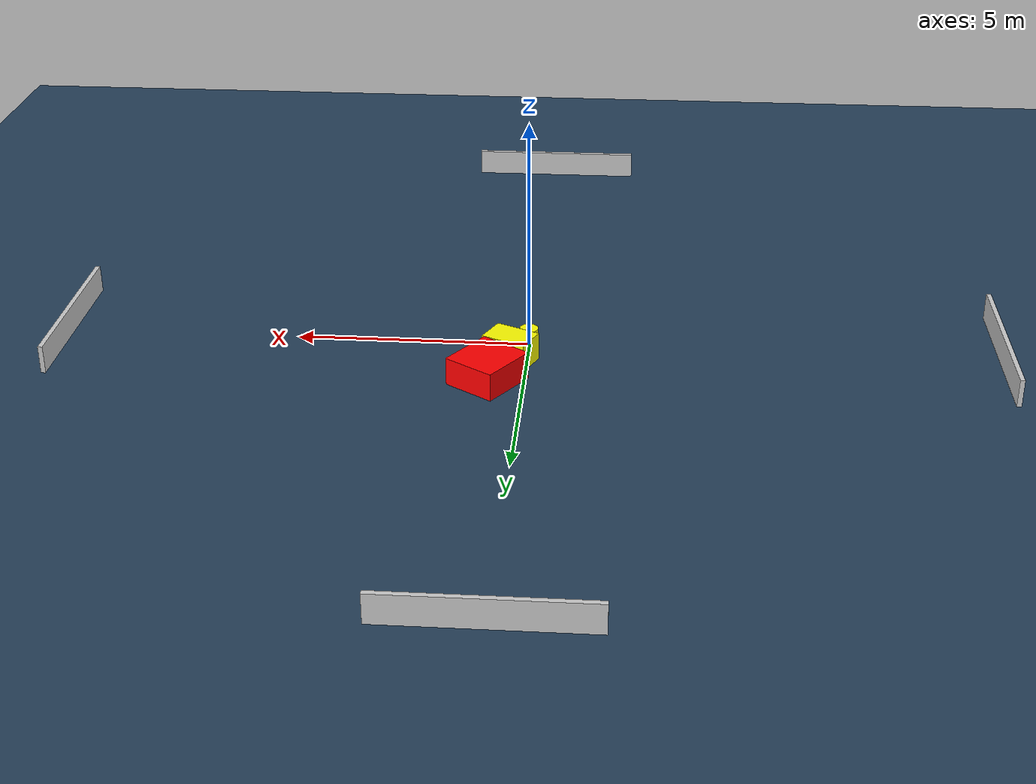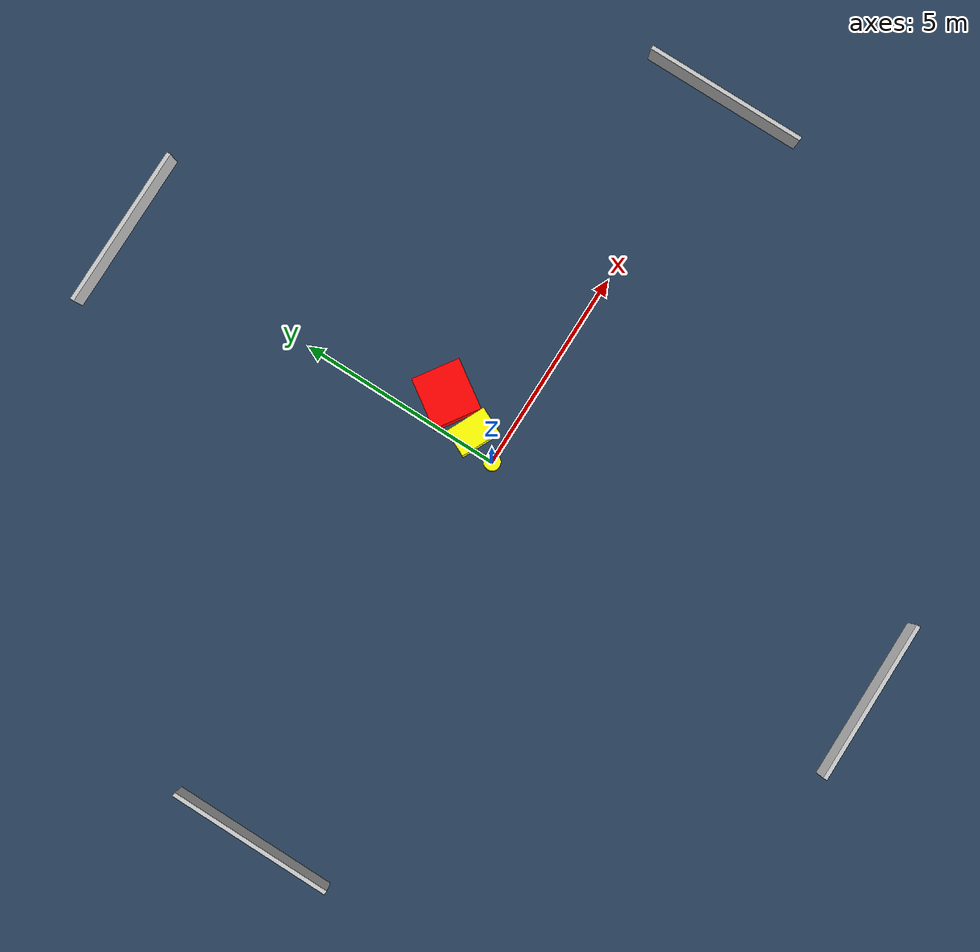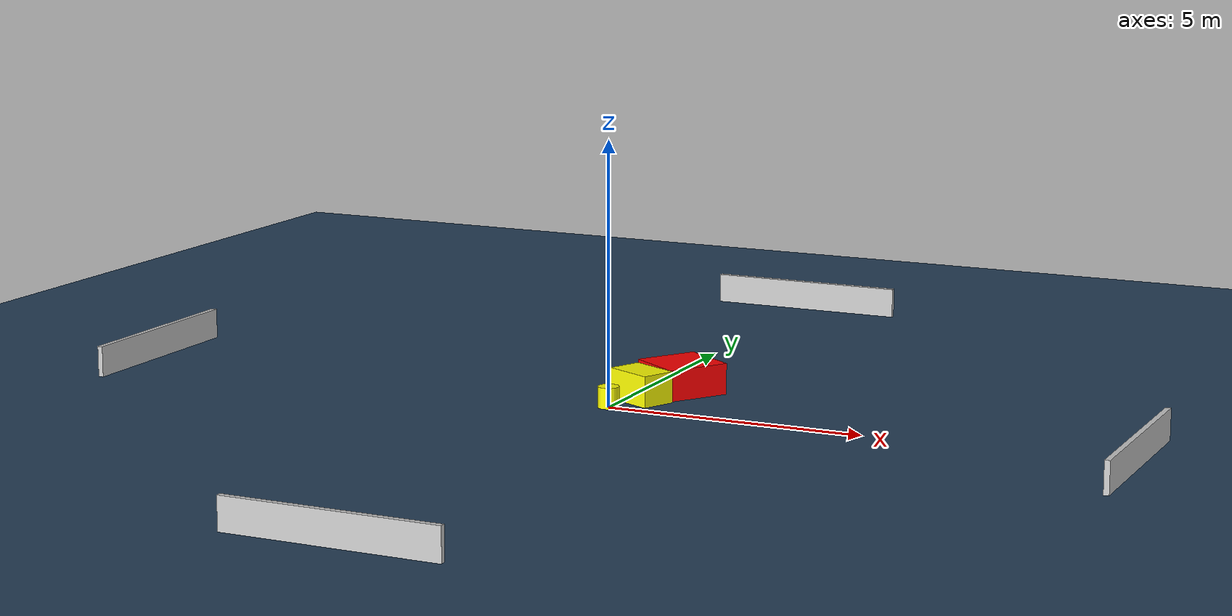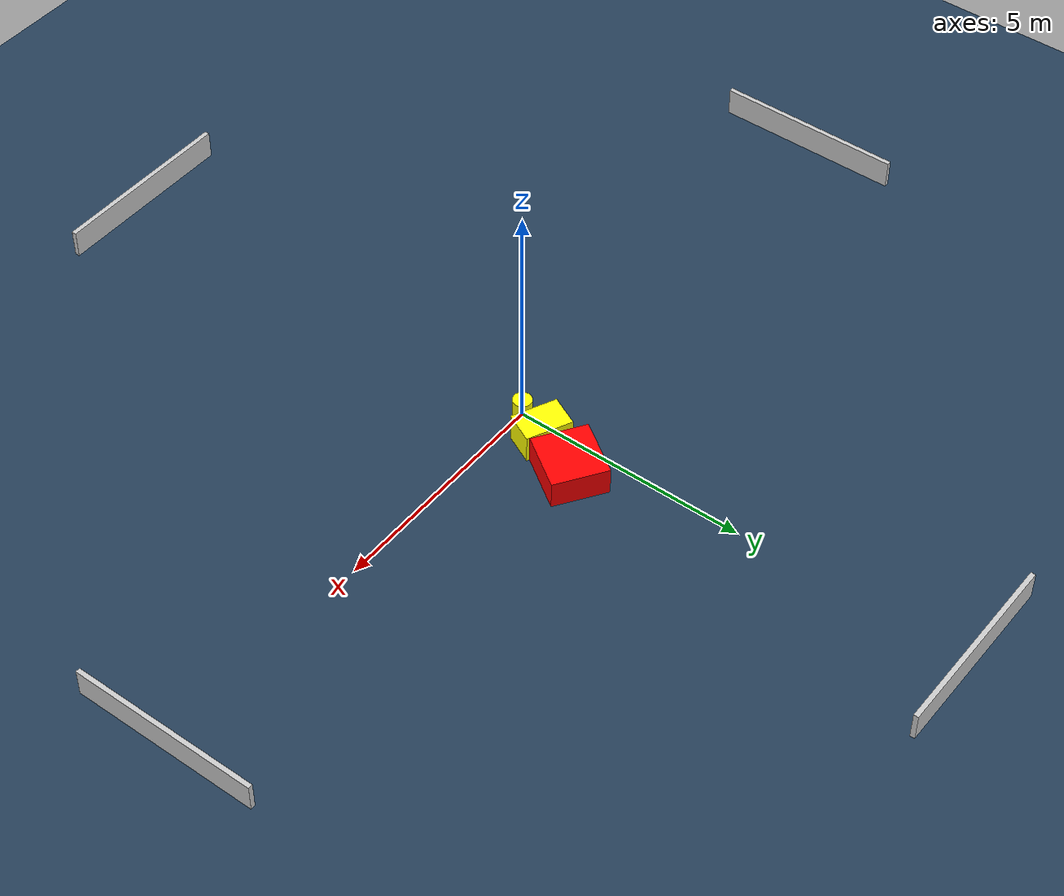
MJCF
<?xml version="1.0" ?>
<mujoco model="generated_environment">
  <option timestep="0.01" integrator="RK4" cone="elliptic"/>
  <default>
    <geom density="1"/>
  </default>
  <asset>
    <texture builtin="gradient" height="3072" name="skybox" rgb1="0.3 0.5 0.7" rgb2="0 0 0" type="skybox" width="512"/>
    <texture builtin="checker" height="300" name="groundplane" rgb1="0.2 0.3 0.4" rgb2="0.1 0.2 0.3" type="2d" width="300"/>
    <material name="groundplane" reflectance="0.2" texrepeat="5 5" texture="groundplane"/>
  </asset>
  <worldbody>
    <light dir="0 0 -1" directional="true" pos="0 0 1.5"/>
    <geom condim="3" friction="0.5 0.005 0.001" material="groundplane" name="floor" pos="0 0 0" size="0 0 0.05" type="plane"/>
    <body name="walls">
      <geom name="wall_1" condim="4" pos="-10.0 0.0 0.3" rgba="0.800000011920929 0.800000011920929 0.800000011920929 1.0" size="0.05 2.0 0.3" type="box"/>
      <geom name="wall_2" condim="4" pos="10.0 0.0 0.3" rgba="0.800000011920929 0.800000011920929 0.800000011920929 1.0" size="0.05 2.0 0.3" type="box"/>
      <geom name="wall_3" condim="4" pos="0.0 -10.0 0.3" rgba="0.800000011920929 0.800000011920929 0.800000011920929 1.0" size="2.0 0.05 0.3" type="box"/>
      <geom name="wall_4" condim="4" pos="0.0 10.0 0.3" rgba="0.800000011920929 0.800000011920929 0.800000011920929 1.0" size="2.0 0.05 0.3" type="box"/>
    </body>
    <body name="robot">
      <joint name="joint_x" type="slide" pos="0 0 0" axis="1 0 0"/>
      <joint name="joint_y" type="slide" pos="0 0 0" axis="0 1 0"/>
      <geom name="robot" type="cylinder" pos="0.0 0.0 0.2" size="0.2 0.2 0.0" mass="5.0" friction="1.0 0.005 0.0001" condim="4" rgba="1.0 1.0 0.0 1.0"/>
    </body>
    <body name="obstacle_1_movable">
      <geom name="obstacle_1_movable" condim="4" pos="0.3379106802170829 0.7211065246790783 0.3" euler="0 0 154.66925886560796" friction="0.0 0.005 0.001" rgba="1.0 1.0 0.0 1.0" size="0.49496587628709016 0.3366630983267704 0.3" type="box" mass="0.1"/>
      <joint type="free"/>
    </body>
    <body name="obstacle_2_static">
      <geom name="obstacle_2_static" condim="4" pos="0.740458428187884 1.6932724041782723 0.3" euler="0 0 326.0902627751825" friction="0.0 0.005 0.001" rgba="1.0 0.0 0.0 1.0" size="0.5864393504961529 0.6235457127592642 0.3" type="box"/>
    </body>
  </worldbody>
  <actuator>
    <motor name="actuator_x" joint="joint_x" gear="1" ctrlrange="-1 1"/>
    <motor name="actuator_y" joint="joint_y" gear="1" ctrlrange="-1 1"/>
  </actuator>
</mujoco>
